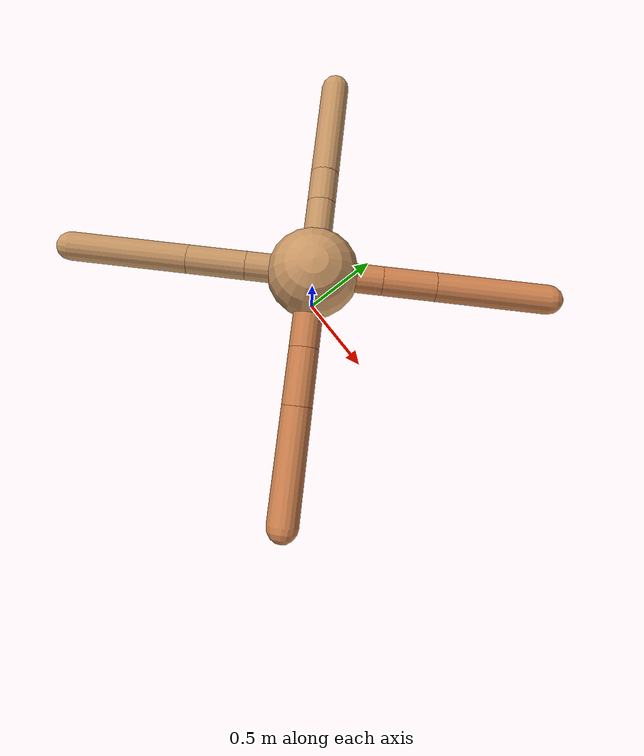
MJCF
<mujoco model="ant">
  <compiler angle="degree" coordinate="local" inertiafromgeom="true" />
  <option integrator="RK4" timestep="0.01" />
  <custom>
    <numeric data="0.0 0.0 0.55 1.0 0.0 0.0 0.0 0.0 1.0 0.0 -1.0 0.0 -1.0 0.0 1.0" name="init_qpos" />
  </custom>
  <default>
    <joint armature="1" damping="1" limited="true" />
    <geom conaffinity="0" condim="3" density="5.0" friction="1.5 0.1 0.1" margin="0.01" rgba="0.8 0.6 0.4 1" />
  </default>
  <worldbody>
    <body name="torso" pos="0 0 0.75">
      <geom name="torso_geom" pos="0 0 0" size="0.25" type="sphere" />

      <body name="front_left_leg" pos="0 0 0">
        <geom fromto="0.0 0.0 0.0 0.26430463531263176 0.26430463531263176 0.0" name="aux_1_geom" size="0.08" type="capsule" rgba=".8 .5 .3 1" />
        <body name="aux_1" pos="0.26430463531263176 0.26430463531263176 0.0">
          <joint axis="0 0 1" name="hip_1" pos="0.0 0.0 0.0" range="-40 40" type="hinge" />
          <geom fromto="0.0 0.0 0.0 0.20122040725872914 0.20122040725872914 0.0" name="left_leg_geom" size="0.08" type="capsule" rgba=".8 .5 .3 1" />
          <body pos="0.20122040725872914 0.20122040725872914 0.0" name="front_left_foot">
            <joint axis="-1 1 0" name="ankle_1" pos="0.0 0.0 0.0" range="30 100" type="hinge" />
            <geom fromto="0.0 0.0 0.0 0.42342058736512045 0.42342058736512045 0.0" name="left_ankle_geom" size="0.08" type="capsule" rgba=".8 .5 .3 1" />
          </body>
        </body>
      </body>
      <body name="front_right_leg" pos="0 0 0">
        <geom fromto="0.0 0.0 0.0 -0.29408201987500426 0.29408201987500426 0.0" name="aux_2_geom" size="0.08" type="capsule" />
        <body name="aux_2" pos="-0.29408201987500426 0.29408201987500426 0.0">
          <joint axis="0 0 1" name="hip_2" pos="0.0 0.0 0.0" range="-40 40" type="hinge" />
          <geom fromto="0.0 0.0 0.0 -0.13121879385785123 0.13121879385785123 0.0" name="right_leg_geom" size="0.08" type="capsule" />
          <body pos="-0.13121879385785123 0.13121879385785123 0.0" name="front_right_foot">
            <joint axis="1 1 0" name="ankle_2" pos="0.0 0.0 0.0" range="-100 -30" type="hinge" />
            <geom fromto="0.0 0.0 0.0 -0.40401332654060784 0.40401332654060784 0.0" name="right_ankle_geom" size="0.08" type="capsule" />
          </body>
        </body>
      </body>
      <body name="left_back_leg" pos="0 0 0">
        <geom fromto="0.0 0.0 0.0 -0.25756841531906627 -0.25756841531906627 0.0" name="aux_3_geom" size="0.08" type="capsule" />
        <body name="aux_3" pos="-0.25756841531906627 -0.25756841531906627 0.0">
          <joint axis="0 0 1" name="hip_3" pos="0.0 0.0 0.0" range="-40 40" type="hinge" />
          <geom fromto="0.0 0.0 0.0 -0.22541905831516146 -0.22541905831516146 0.0" name="back_leg_geom" size="0.08" type="capsule" />
          <body pos="-0.22541905831516146 -0.22541905831516146 0.0" name="left_back_foot">
            <joint axis="-1 1 0" name="ankle_3" pos="0.0 0.0 0.0" range="-100 -30" type="hinge" />
            <geom fromto="0.0 0.0 0.0 -0.4602410316281489 -0.4602410316281489 0.0" name="third_ankle_geom" size="0.08" type="capsule" />
          </body>
        </body>
      </body>
      <body name="right_back_leg" pos="0 0 0">
        <geom fromto="0.0 0.0 0.0 0.2934890824777973 -0.2934890824777973 0.0" name="aux_4_geom" size="0.08" type="capsule" rgba=".8 .5 .3 1" />
        <body name="aux_4" pos="0.2934890824777973 -0.2934890824777973 0.0">
          <joint axis="0 0 1" name="hip_4" pos="0.0 0.0 0.0" range="-40 40" type="hinge" />
          <geom fromto="0.0 0.0 0.0 0.2095751819824868 -0.2095751819824868 0.0" name="rightback_leg_geom" size="0.08" type="capsule" rgba=".8 .5 .3 1" />
          <body pos="0.2095751819824868 -0.2095751819824868 0.0" name="right_back_foot">
            <joint axis="1 1 0" name="ankle_4" pos="0.0 0.0 0.0" range="30 100" type="hinge" />
            <geom fromto="0.0 0.0 0.0 0.3951824624605418 -0.3951824624605418 0.0" name="fourth_ankle_geom" size="0.08" type="capsule" rgba=".8 .5 .3 1" />
          </body>
        </body>
      </body>
    </body>
  </worldbody>
  <actuator>
    <motor ctrllimited="true" ctrlrange="-1.0 1.0" joint="hip_4" gear="150" />
    <motor ctrllimited="true" ctrlrange="-1.0 1.0" joint="ankle_4" gear="150" />
    <motor ctrllimited="true" ctrlrange="-1.0 1.0" joint="hip_1" gear="150" />
    <motor ctrllimited="true" ctrlrange="-1.0 1.0" joint="ankle_1" gear="150" />
    <motor ctrllimited="true" ctrlrange="-1.0 1.0" joint="hip_2" gear="150" />
    <motor ctrllimited="true" ctrlrange="-1.0 1.0" joint="ankle_2" gear="150" />
    <motor ctrllimited="true" ctrlrange="-1.0 1.0" joint="hip_3" gear="150" />
    <motor ctrllimited="true" ctrlrange="-1.0 1.0" joint="ankle_3" gear="150" />
  </actuator>
</mujoco>
